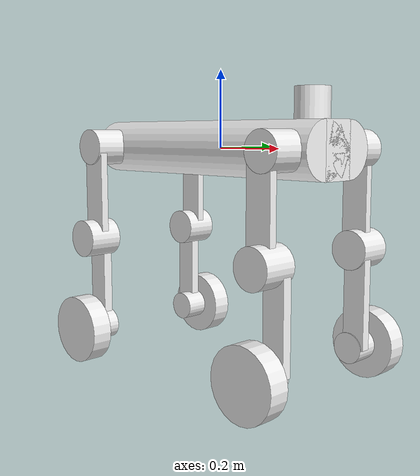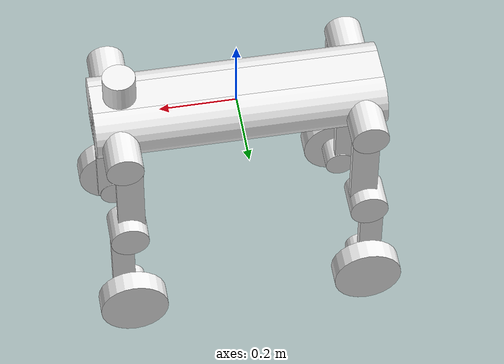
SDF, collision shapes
<sdf version='1.9'>
  <model name='M20'>
    <!-- Enable collision with other objects, disable self-collision -->
    <self_collide>false</self_collide>

    <link name='base_link'>
      <inertial>
        <pose>0.00355105878308153 0.0016507579200937 -0.00346462146571654 0 0 0</pose>
        <mass>15.882</mass>
        <inertia>
          <ixx>0.088078699999999996</ixx>
          <ixy>0.0013960000000000001</ixy>
          <ixz>0.000111</ixz>
          <iyy>0.53381599999999996</iyy>
          <iyz>0.00051900000000000004</iyz>
          <izz>0.56391500000000006</izz>
        </inertia>
      </inertial>
      <collision name='base_link_collision'>
        <pose>0 0 0 0 0 0</pose>
        <geometry>
          <box>
            <size>0.75 0.09 0.14</size>
          </box>
        </geometry>
        <surface>
          <friction>
            <ode>
              <mu>0.8</mu>
              <mu2>0.8</mu2>
            </ode>
          </friction>
          <contact>
            <ode>
              <kp>1e6</kp>
              <kd>100</kd>
              <min_depth>0.001</min_depth>
            </ode>
          </contact>
        </surface>
      </collision>
      <collision name='base_link_collision_1'>
        <pose>0 0.045 0 0 1.570796326794897 0</pose>
        <geometry>
          <cylinder>
            <length>0.75</length>
            <radius>0.070000000000000007</radius>
          </cylinder>
        </geometry>
        <surface>
          <friction>
            <ode>
              <mu>0.8</mu>
              <mu2>0.8</mu2>
            </ode>
          </friction>
          <contact>
            <ode>
              <kp>1e6</kp>
              <kd>100</kd>
              <min_depth>0.001</min_depth>
            </ode>
          </contact>
        </surface>
      </collision>
      <collision name='base_link_collision_2'>
        <pose>0 -0.045 0 0 1.570796326794897 0</pose>
        <geometry>
          <cylinder>
            <length>0.75</length>
            <radius>0.070000000000000007</radius>
          </cylinder>
        </geometry>
        <surface>
          <friction>
            <ode>
              <mu>0.8</mu>
              <mu2>0.8</mu2>
            </ode>
          </friction>
          <contact>
            <ode>
              <kp>1e6</kp>
              <kd>100</kd>
              <min_depth>0.001</min_depth>
            </ode>
          </contact>
        </surface>
      </collision>
      <visual name='base_link_visual'>
        <pose>0 0 0 0 0 0</pose>
        <geometry>
          <mesh>
            <scale>1 1 1</scale>
            <uri>../meshes/base_link.STL</uri>
          </mesh>
        </geometry>
        <material>
          <diffuse>0.941176 0.941176 0.941176 1</diffuse>
          <ambient>0.941176 0.941176 0.941176 1</ambient>
        </material>
      </visual>
      <!-- IMU Sensor -->
      <sensor name='imu_sensor' type='imu'>
        <pose>0.0632 -0.0268 -0.0435 0 0 0</pose>
        <always_on>true</always_on>
        <update_rate>200</update_rate>
        <visualize>false</visualize>
        <!-- topic auto-generated by Gazebo using spawned model name -->
        <imu>
          <angular_velocity>
            <x>
              <noise type='none'/>
            </x>
            <y>
              <noise type='none'/>
            </y>
            <z>
              <noise type='none'/>
            </z>
          </angular_velocity>
          <linear_acceleration>
            <x>
              <noise type='none'/>
            </x>
            <y>
              <noise type='none'/>
            </y>
            <z>
              <noise type='none'/>
            </z>
          </linear_acceleration>
        </imu>
      </sensor>

      <!-- Front Camera Sensor -->
      <sensor name='front_camera' type='camera'>
        <pose>0.37646 0 0.03738 0 0 0</pose>
        <always_on>false</always_on>
        <update_rate>5</update_rate>
        <visualize>false</visualize>
        <!-- topic auto-generated by Gazebo using spawned model name -->
        <camera>
          <horizontal_fov>1.047</horizontal_fov>
          <image>
            <width>640</width>
            <height>480</height>
            <format>R8G8B8</format>
          </image>
          <clip>
            <near>0.1</near>
            <far>100</far>
          </clip>
        </camera>
      </sensor>

      <!-- Rear Camera Sensor -->
      <sensor name='rear_camera' type='camera'>
        <pose>-0.37646 0 0.03738 0 0 3.14159</pose>
        <always_on>false</always_on>
        <update_rate>5</update_rate>
        <visualize>false</visualize>
        <!-- topic auto-generated by Gazebo using spawned model name -->
        <camera>
          <horizontal_fov>1.047</horizontal_fov>
          <image>
            <width>640</width>
            <height>480</height>
            <format>R8G8B8</format>
          </image>
          <clip>
            <near>0.1</near>
            <far>100</far>
          </clip>
        </camera>
      </sensor>

      <!-- Velodyne HDL-32E LiDAR mounted on top of robot head -->
      <!-- Visual: cylindrical body representing the Velodyne unit -->
      <visual name='velodyne_base_visual'>
        <pose>0.3 0 0.095 0 0 0</pose>
        <geometry>
          <cylinder>
            <radius>0.04267</radius>
            <length>0.05</length>
          </cylinder>
        </geometry>
        <material>
          <diffuse>0.2 0.2 0.2 1</diffuse>
          <ambient>0.2 0.2 0.2 1</ambient>
        </material>
      </visual>
      <visual name='velodyne_top_visual'>
        <pose>0.3 0 0.1325 0 0 0</pose>
        <geometry>
          <cylinder>
            <radius>0.04267</radius>
            <length>0.025</length>
          </cylinder>
        </geometry>
        <material>
          <diffuse>0.1 0.1 0.8 1</diffuse>
          <ambient>0.1 0.1 0.8 1</ambient>
        </material>
      </visual>
      <collision name='velodyne_collision'>
        <pose>0.3 0 0.1075 0 0 0</pose>
        <geometry>
          <cylinder>
            <radius>0.04267</radius>
            <length>0.075</length>
          </cylinder>
        </geometry>
      </collision>
      <sensor name='velodyne_hdl32e' type='gpu_lidar'>
        <pose>0.3 0 0.145 0 0 0</pose>
        <always_on>true</always_on>
        <update_rate>10</update_rate>
        <visualize>true</visualize>
        <lidar>
          <scan>
            <horizontal>
              <samples>1024</samples>
              <resolution>1</resolution>
              <min_angle>-3.14159</min_angle>
              <max_angle>3.14159</max_angle>
            </horizontal>
            <vertical>
              <samples>32</samples>
              <resolution>1</resolution>
              <min_angle>-0.5353</min_angle>
              <max_angle>0.1862</max_angle>
            </vertical>
          </scan>
          <range>
            <min>0.9</min>
            <max>70</max>
            <resolution>0.01</resolution>
          </range>
          <noise>
            <type>gaussian</type>
            <mean>0.0</mean>
            <stddev>0.008</stddev>
          </noise>
        </lidar>
      </sensor>
    </link>
    <joint name='fl_hipx_joint' type='revolute'>
      <pose relative_to='base_link'>0.3141 0.06850000000000001 0 0 0 0</pose>
      <parent>base_link</parent>
      <child>fl_hipx</child>
      <axis>
        <xyz>-1 0 0</xyz>
        <limit>
          <lower>-0.61099999999999999</lower>
          <upper>0.436</upper>
          <effort>76.400000000000006</effort>
          <velocity>22.399999999999999</velocity>
        </limit>
        <dynamics>
          <spring_reference>0</spring_reference>
          <spring_stiffness>0</spring_stiffness>
        </dynamics>
      </axis>
    </joint>
    <link name='fl_hipx'>
      <pose relative_to='fl_hipx_joint'>0 0 0 0 0 0</pose>
      <inertial>
        <pose>-0.0111893129496933 0.00891693461032669 0.000405665689861192 0 0 0</pose>
        <mass>0.261359958476582</mass>
        <inertia>
          <ixx>0.00018599999999999999</ixx>
          <ixy>2.5000000000000001e-05</ixy>
          <ixz>-1.2e-05</ixz>
          <iyy>0.00037100000000000002</iyy>
          <iyz>-7.9999999999999996e-06</iyz>
          <izz>0.00028800000000000001</izz>
        </inertia>
      </inertial>
      <collision name='fl_hipx_collision'>
        <pose>0 0.055 0 1.57079632 0 0</pose>
        <geometry>
          <cylinder>
            <length>0.14000000000000001</length>
            <radius>0.048000000000000001</radius>
          </cylinder>
        </geometry>
      </collision>
      <visual name='fl_hipx_visual'>
        <pose>0 0 0 0 0 0</pose>
        <geometry>
          <mesh>
            <scale>1 1 1</scale>
            <uri>../meshes/fl_hipx.STL</uri>
          </mesh>
        </geometry>
        <material>
          <diffuse>0.941176 0.941176 0.941176 1</diffuse>
          <ambient>0.941176 0.941176 0.941176 1</ambient>
        </material>
      </visual>
    </link>
    <joint name='fl_hipy_joint' type='revolute'>
      <pose relative_to='fl_hipx'>0 0 0 0 0 0</pose>
      <parent>fl_hipx</parent>
      <child>fl_hipy</child>
      <axis>
        <xyz>0 -1 0</xyz>
        <limit>
          <lower>-2.5830000000000002</lower>
          <upper>2.286</upper>
          <effort>76.400000000000006</effort>
          <velocity>22.399999999999999</velocity>
        </limit>
        <dynamics>
          <spring_reference>0</spring_reference>
          <spring_stiffness>0</spring_stiffness>
        </dynamics>
      </axis>
    </joint>
    <link name='fl_hipy'>
      <pose relative_to='fl_hipy_joint'>0 0 0 0 0 0</pose>
      <inertial>
        <pose>-0.00199374763010413 0.09843896090458019 -0.130663565833427 0 0 0</pose>
        <mass>2.4929999999999999</mass>
        <inertia>
          <ixx>0.038858999999999998</ixx>
          <ixy>-2.3e-05</ixy>
          <ixz>-3.6999999999999998e-05</ixz>
          <iyy>0.038039999999999997</iyy>
          <iyz>-0.0059849999999999999</iyz>
          <izz>0.0038479999999999999</izz>
        </inertia>
      </inertial>
      <collision name='fl_hipy_collision'>
        <pose>-0.01 0.11 -0.125 0 0 0</pose>
        <geometry>
          <box>
            <size>0.07 0.02 0.25</size>
          </box>
        </geometry>
      </collision>
      <collision name='fl_hipy_collision_1'>
        <pose>0 0.11 -0.25 1.57079632 0 0</pose>
        <geometry>
          <cylinder>
            <length>0.089999999999999997</length>
            <radius>0.050000000000000003</radius>
          </cylinder>
        </geometry>
      </collision>
      <visual name='fl_hipy_visual'>
        <pose>0 0 0 0 0 0</pose>
        <geometry>
          <mesh>
            <scale>1 1 1</scale>
            <uri>../meshes/fl_hipy.STL</uri>
          </mesh>
        </geometry>
        <material>
          <diffuse>0.941176 0.941176 0.941176 1</diffuse>
          <ambient>0.941176 0.941176 0.941176 1</ambient>
        </material>
      </visual>
    </link>
    <joint name='fl_knee_joint' type='revolute'>
      <pose relative_to='fl_hipy'>0 0.0984 -0.25 0 0 0</pose>
      <parent>fl_hipy</parent>
      <child>fl_knee</child>
      <axis>
        <xyz>0 -1 0</xyz>
        <limit>
          <lower>-2.7919999999999998</lower>
          <upper>2.8090000000000002</upper>
          <effort>76.400000000000006</effort>
          <velocity>22.399999999999999</velocity>
        </limit>
        <dynamics>
          <spring_reference>0</spring_reference>
          <spring_stiffness>0</spring_stiffness>
        </dynamics>
      </axis>
    </joint>
    <link name='fl_knee'>
      <pose relative_to='fl_knee_joint'>0 0 0 0 0 0</pose>
      <inertial>
        <pose>0.00341916513259743 0.0026912421076368 -0.181265498605881 0 0 0</pose>
        <mass>1.26</mass>
        <inertia>
          <ixx>0.012936</ixx>
          <ixy>-5.3000000000000001e-05</ixy>
          <ixz>0.00022599999999999999</ixz>
          <iyy>0.013122999999999999</iyy>
          <iyz>-0.001681</iyz>
          <izz>0.0016819999999999999</izz>
        </inertia>
      </inertial>
      <collision name='fl_knee_collision'>
        <pose>0.015 -0.015 -0.125 0 0 0</pose>
        <geometry>
          <box>
            <size>0.06 0.025 0.25</size>
          </box>
        </geometry>
      </collision>
      <collision name='fl_knee_collision_1'>
        <pose>0 0.02 -0.25 1.57079632 0 0</pose>
        <geometry>
          <cylinder>
            <length>0.10000000000000001</length>
            <radius>0.040000000000000001</radius>
          </cylinder>
        </geometry>
      </collision>
      <visual name='fl_knee_visual'>
        <pose>0 0 0 0 0 0</pose>
        <geometry>
          <mesh>
            <scale>1 1 1</scale>
            <uri>../meshes/fl_knee.STL</uri>
          </mesh>
        </geometry>
        <material>
          <diffuse>0.941176 0.941176 0.941176 1</diffuse>
          <ambient>0.941176 0.941176 0.941176 1</ambient>
        </material>
      </visual>
    </link>
    <joint name='fl_wheel_joint' type='revolute'>
      <pose relative_to='fl_knee'>0 0.059676 -0.25 0 0 0</pose>
      <parent>fl_knee</parent>
      <child>fl_wheel</child>
      <axis>
        <xyz>0 -1 0</xyz>
        <limit>
          <effort>21.600000000000001</effort>
          <velocity>79.299999999999997</velocity>
          <lower>-10000000000000000</lower>
          <upper>10000000000000000</upper>
        </limit>
        <dynamics>
          <spring_reference>0</spring_reference>
          <spring_stiffness>0</spring_stiffness>
        </dynamics>
      </axis>
    </joint>
    <link name='fl_wheel'>
      <pose relative_to='fl_wheel_joint'>0 0 0 0 0 0</pose>
      <inertial>
        <pose>-3.11398454355682e-07 0.000279001520740008 5.70329233673394e-07 0 0 0</pose>
        <mass>0.63800000000000001</mass>
        <inertia>
          <ixx>0.0015349999999999999</ixx>
          <ixy>0</ixy>
          <ixz>0</ixz>
          <iyy>0.0028530000000000001</iyy>
          <iyz>0</iyz>
          <izz>0.0015349999999999999</izz>
        </inertia>
      </inertial>
      <collision name='fl_wheel_collision'>
        <pose>0 0 0 1.57079632 0 0</pose>
        <geometry>
          <cylinder>
            <length>0.053999999999999999</length>
            <radius>0.089999999999999997</radius>
          </cylinder>
        </geometry>
        <surface>
          <friction>
            <ode>
              <mu>1.0</mu>
              <mu2>1.0</mu2>
              <fdir1>0 0 1</fdir1>
            </ode>
          </friction>
          <contact>
            <ode>
              <kp>1e6</kp>
              <kd>100</kd>
              <min_depth>0.001</min_depth>
            </ode>
          </contact>
        </surface>
      </collision>
      <visual name='fl_wheel_visual'>
        <pose>0 0 0 0 0 0</pose>
        <geometry>
          <mesh>
            <scale>1 1 1</scale>
            <uri>../meshes/fl_wheel.STL</uri>
          </mesh>
        </geometry>
        <material>
          <diffuse>0.941176 0.941176 0.941176 1</diffuse>
          <ambient>0.941176 0.941176 0.941176 1</ambient>
        </material>
      </visual>
    </link>
    <joint name='fr_hipx_joint' type='revolute'>
      <pose relative_to='base_link'>0.3141 -0.06850000000000001 0 0 0 0</pose>
      <parent>base_link</parent>
      <child>fr_hipx</child>
      <axis>
        <xyz>-1 0 0</xyz>
        <limit>
          <lower>-0.436</lower>
          <upper>0.61099999999999999</upper>
          <effort>76.400000000000006</effort>
          <velocity>22.399999999999999</velocity>
        </limit>
        <dynamics>
          <spring_reference>0</spring_reference>
          <spring_stiffness>0</spring_stiffness>
        </dynamics>
      </axis>
    </joint>
    <link name='fr_hipx'>
      <pose relative_to='fr_hipx_joint'>0 0 0 0 0 0</pose>
      <inertial>
        <pose>-0.0110900940309543 -0.0087503473771439 0.000521421017057358 0 0 0</pose>
        <mass>0.261359958476582</mass>
        <inertia>
          <ixx>0.00018599999999999999</ixx>
          <ixy>-2.5999999999999998e-05</ixy>
          <ixz>-1.2e-05</ixz>
          <iyy>0.00037100000000000002</iyy>
          <iyz>7.9999999999999996e-06</iyz>
          <izz>0.00028800000000000001</izz>
        </inertia>
      </inertial>
      <collision name='fr_hipx_collision'>
        <pose>0 -0.055 0 1.57079632 0 0</pose>
        <geometry>
          <cylinder>
            <length>0.14000000000000001</length>
            <radius>0.048000000000000001</radius>
          </cylinder>
        </geometry>
      </collision>
      <visual name='fr_hipx_visual'>
        <pose>0 0 0 0 0 0</pose>
        <geometry>
          <mesh>
            <scale>1 1 1</scale>
            <uri>../meshes/fr_hipx.STL</uri>
          </mesh>
        </geometry>
        <material>
          <diffuse>0.941176 0.941176 0.941176 1</diffuse>
          <ambient>0.941176 0.941176 0.941176 1</ambient>
        </material>
      </visual>
    </link>
    <joint name='fr_hipy_joint' type='revolute'>
      <pose relative_to='fr_hipx'>0 0 0 0 0 0</pose>
      <parent>fr_hipx</parent>
      <child>fr_hipy</child>
      <axis>
        <xyz>0 -1 0</xyz>
        <limit>
          <lower>-2.5830000000000002</lower>
          <upper>2.286</upper>
          <effort>76.400000000000006</effort>
          <velocity>22.399999999999999</velocity>
        </limit>
        <dynamics>
          <spring_reference>0</spring_reference>
          <spring_stiffness>0</spring_stiffness>
        </dynamics>
      </axis>
    </joint>
    <link name='fr_hipy'>
      <pose relative_to='fr_hipy_joint'>0 0 0 0 0 0</pose>
      <inertial>
        <pose>-0.00229991904853988 -0.0989709441053532 -0.130925037640537 0 0 0</pose>
        <mass>2.4929999999999999</mass>
        <inertia>
          <ixx>0.039276999999999999</ixx>
          <ixy>5.0000000000000004e-06</ixy>
          <ixz>-6.3e-05</ixz>
          <iyy>0.038484999999999998</iyy>
          <iyz>0.0059699999999999996</iyz>
          <izz>0.003921</izz>
        </inertia>
      </inertial>
      <collision name='fr_hipy_collision'>
        <pose>-0.01 -0.11 -0.125 0 0 0</pose>
        <geometry>
          <box>
            <size>0.07 0.02 0.25</size>
          </box>
        </geometry>
      </collision>
      <collision name='fr_hipy_collision_1'>
        <pose>0 -0.11 -0.25 1.57079632 0 0</pose>
        <geometry>
          <cylinder>
            <length>0.089999999999999997</length>
            <radius>0.050000000000000003</radius>
          </cylinder>
        </geometry>
      </collision>
      <visual name='fr_hipy_visual'>
        <pose>0 0 0 0 0 0</pose>
        <geometry>
          <mesh>
            <scale>1 1 1</scale>
            <uri>../meshes/fr_hipy.STL</uri>
          </mesh>
        </geometry>
        <material>
          <diffuse>0.941176 0.941176 0.941176 1</diffuse>
          <ambient>0.941176 0.941176 0.941176 1</ambient>
        </material>
      </visual>
    </link>
    <joint name='fr_knee_joint' type='revolute'>
      <pose relative_to='fr_hipy'>0 -0.0984 -0.25 0 0 0</pose>
      <parent>fr_hipy</parent>
      <child>fr_knee</child>
      <axis>
        <xyz>0 -1 0</xyz>
        <limit>
          <lower>-2.7919999999999998</lower>
          <upper>2.8090000000000002</upper>
          <effort>76.400000000000006</effort>
          <velocity>22.399999999999999</velocity>
        </limit>
        <dynamics>
          <spring_reference>0</spring_reference>
          <spring_stiffness>0</spring_stiffness>
        </dynamics>
      </axis>
    </joint>
    <link name='fr_knee'>
      <pose relative_to='fr_knee_joint'>0 0 0 0 0 0</pose>
      <inertial>
        <pose>0.0035494546955584 -0.002478843181213 -0.180089236444296 0 0 0</pose>
        <mass>1.26</mass>
        <inertia>
          <ixx>0.012936</ixx>
          <ixy>5.3000000000000001e-05</ixy>
          <ixz>0.00022599999999999999</ixz>
          <iyy>0.013122999999999999</iyy>
          <iyz>0.001681</iyz>
          <izz>0.0012830000000000001</izz>
        </inertia>
      </inertial>
      <collision name='fr_knee_collision'>
        <pose>0.015 0.015 -0.125 0 0 0</pose>
        <geometry>
          <box>
            <size>0.06 0.025 0.25</size>
          </box>
        </geometry>
      </collision>
      <collision name='fr_knee_collision_1'>
        <pose>0 -0.02 -0.25 1.57079632 0 0</pose>
        <geometry>
          <cylinder>
            <length>0.10000000000000001</length>
            <radius>0.040000000000000001</radius>
          </cylinder>
        </geometry>
      </collision>
      <visual name='fr_knee_visual'>
        <pose>0 0 0 0 0 0</pose>
        <geometry>
          <mesh>
            <scale>1 1 1</scale>
            <uri>../meshes/fr_knee.STL</uri>
          </mesh>
        </geometry>
        <material>
          <diffuse>0.941176 0.941176 0.941176 1</diffuse>
          <ambient>0.941176 0.941176 0.941176 1</ambient>
        </material>
      </visual>
    </link>
    <joint name='fr_wheel_joint' type='revolute'>
      <pose relative_to='fr_knee'>0 -0.059676 -0.25 0 0 0</pose>
      <parent>fr_knee</parent>
      <child>fr_wheel</child>
      <axis>
        <xyz>0 -1 0</xyz>
        <limit>
          <effort>21.600000000000001</effort>
          <velocity>79.299999999999997</velocity>
          <lower>-10000000000000000</lower>
          <upper>10000000000000000</upper>
        </limit>
        <dynamics>
          <spring_reference>0</spring_reference>
          <spring_stiffness>0</spring_stiffness>
        </dynamics>
      </axis>
    </joint>
    <link name='fr_wheel'>
      <pose relative_to='fr_wheel_joint'>0 0 0 0 0 0</pose>
      <inertial>
        <pose>-6.4732687427016e-07 -0.000279012463466427 -4.62420470803693e-08 0 0 0</pose>
        <mass>0.63800000000000001</mass>
        <inertia>
          <ixx>0.0015349999999999999</ixx>
          <ixy>0</ixy>
          <ixz>0</ixz>
          <iyy>0.0028530000000000001</iyy>
          <iyz>0</iyz>
          <izz>0.0015349999999999999</izz>
        </inertia>
      </inertial>
      <collision name='fr_wheel_collision'>
        <pose>0 0 0 1.57079632 0 0</pose>
        <geometry>
          <cylinder>
            <length>0.053999999999999999</length>
            <radius>0.089999999999999997</radius>
          </cylinder>
        </geometry>
        <surface>
          <friction>
            <ode>
              <mu>1.0</mu>
              <mu2>1.0</mu2>
              <fdir1>0 0 1</fdir1>
            </ode>
          </friction>
          <contact>
            <ode>
              <kp>1e6</kp>
              <kd>100</kd>
              <min_depth>0.001</min_depth>
            </ode>
          </contact>
        </surface>
      </collision>
      <visual name='fr_wheel_visual'>
        <pose>0 0 0 0 0 0</pose>
        <geometry>
          <mesh>
            <scale>1 1 1</scale>
            <uri>../meshes/fr_wheel.STL</uri>
          </mesh>
        </geometry>
        <material>
          <diffuse>0.941176 0.941176 0.941176 1</diffuse>
          <ambient>0.941176 0.941176 0.941176 1</ambient>
        </material>
      </visual>
    </link>
    <joint name='hl_hipx_joint' type='revolute'>
      <pose relative_to='base_link'>-0.3141 0.06850000000000001 0 0 0 0</pose>
      <parent>base_link</parent>
      <child>hl_hipx</child>
      <axis>
        <xyz>-1 0 0</xyz>
        <limit>
          <lower>-0.61099999999999999</lower>
          <upper>0.436</upper>
          <effort>76.400000000000006</effort>
          <velocity>22.399999999999999</velocity>
        </limit>
        <dynamics>
          <spring_reference>0</spring_reference>
          <spring_stiffness>0</spring_stiffness>
        </dynamics>
      </axis>
    </joint>
    <link name='hl_hipx'>
      <pose relative_to='hl_hipx_joint'>0 0 0 0 0 0</pose>
      <inertial>
        <pose>0.0110900940233134 0.008750140350407431 0.000524883746291591 0 0 0</pose>
        <mass>0.261359958476582</mass>
        <inertia>
          <ixx>0.00018599999999999999</ixx>
          <ixy>-2.5000000000000001e-05</ixy>
          <ixz>1.2e-05</ixz>
          <iyy>0.00037100000000000002</iyy>
          <iyz>-7.9999999999999996e-06</iyz>
          <izz>0.00028800000000000001</izz>
        </inertia>
      </inertial>
      <collision name='hl_hipx_collision'>
        <pose>0 0.055 0 1.57079632 0 0</pose>
        <geometry>
          <cylinder>
            <length>0.14000000000000001</length>
            <radius>0.048000000000000001</radius>
          </cylinder>
        </geometry>
      </collision>
      <visual name='hl_hipx_visual'>
        <pose>0 0 0 0 0 0</pose>
        <geometry>
          <mesh>
            <scale>1 1 1</scale>
            <uri>../meshes/hl_hipx.STL</uri>
          </mesh>
        </geometry>
        <material>
          <diffuse>0.941176 0.941176 0.941176 1</diffuse>
          <ambient>0.941176 0.941176 0.941176 1</ambient>
        </material>
      </visual>
    </link>
    <joint name='hl_hipy_joint' type='revolute'>
      <pose relative_to='hl_hipx'>0 0 0 0 0 0</pose>
      <parent>hl_hipx</parent>
      <child>hl_hipy</child>
      <axis>
        <xyz>0 -1 0</xyz>
        <limit>
          <lower>-2.286</lower>
          <upper>2.5830000000000002</upper>
          <effort>76.400000000000006</effort>
          <velocity>22.399999999999999</velocity>
        </limit>
        <dynamics>
          <spring_reference>0</spring_reference>
          <spring_stiffness>0</spring_stiffness>
        </dynamics>
      </axis>
    </joint>
    <link name='hl_hipy'>
      <pose relative_to='hl_hipy_joint'>0 0 0 0 0 0</pose>
      <inertial>
        <pose>0.00204343366218146 0.09902274738330449 -0.13069726691312 0 0 0</pose>
        <mass>2.4929999999999999</mass>
        <inertia>
          <ixx>0.039361</ixx>
          <ixy>2.9e-05</ixy>
          <ixz>9.0000000000000002e-06</ixz>
          <iyy>0.038553999999999998</iyy>
          <iyz>-0.0060010000000000003</iyz>
          <izz>0.0039139999999999999</izz>
        </inertia>
      </inertial>
      <collision name='hl_hipy_collision'>
        <pose>0.01 0.11 -0.125 0 0 0</pose>
        <geometry>
          <box>
            <size>0.07 0.02 0.25</size>
          </box>
        </geometry>
      </collision>
      <collision name='hl_hipy_collision_1'>
        <pose>0 0.11 -0.25 1.57079632 0 0</pose>
        <geometry>
          <cylinder>
            <length>0.089999999999999997</length>
            <radius>0.050000000000000003</radius>
          </cylinder>
        </geometry>
      </collision>
      <visual name='hl_hipy_visual'>
        <pose>0 0 0 0 0 0</pose>
        <geometry>
          <mesh>
            <scale>1 1 1</scale>
            <uri>../meshes/hl_hipy.STL</uri>
          </mesh>
        </geometry>
        <material>
          <diffuse>0.941176 0.941176 0.941176 1</diffuse>
          <ambient>0.941176 0.941176 0.941176 1</ambient>
        </material>
      </visual>
    </link>
    <joint name='hl_knee_joint' type='revolute'>
      <pose relative_to='hl_hipy'>0 0.0984 -0.25 0 0 0</pose>
      <parent>hl_hipy</parent>
      <child>hl_knee</child>
      <axis>
        <xyz>0 -1 0</xyz>
        <limit>
          <lower>-2.8090000000000002</lower>
          <upper>2.7919999999999998</upper>
          <effort>76.400000000000006</effort>
          <velocity>22.399999999999999</velocity>
        </limit>
        <dynamics>
          <spring_reference>0</spring_reference>
          <spring_stiffness>0</spring_stiffness>
        </dynamics>
      </axis>
    </joint>
    <link name='hl_knee'>
      <pose relative_to='hl_knee_joint'>0 0 0 0 0 0</pose>
      <inertial>
        <pose>-0.00354945209738589 0.00247884637205834 -0.180089257150601 0 0 0</pose>
        <mass>1.26</mass>
        <inertia>
          <ixx>0.012936</ixx>
          <ixy>5.3000000000000001e-05</ixy>
          <ixz>-0.00022599999999999999</ixz>
          <iyy>0.013122999999999999</iyy>
          <iyz>-0.001681</iyz>
          <izz>0.0012830000000000001</izz>
        </inertia>
      </inertial>
      <collision name='hl_knee_collision'>
        <pose>-0.015 0.015 -0.125 0 0 0</pose>
        <geometry>
          <box>
            <size>0.06 0.025 0.25</size>
          </box>
        </geometry>
      </collision>
      <collision name='hl_knee_collision_1'>
        <pose>0 0.02 -0.25 1.57079632 0 0</pose>
        <geometry>
          <cylinder>
            <length>0.10000000000000001</length>
            <radius>0.040000000000000001</radius>
          </cylinder>
        </geometry>
      </collision>
      <visual name='hl_knee_visual'>
        <pose>0 0 0 0 0 0</pose>
        <geometry>
          <mesh>
            <scale>1 1 1</scale>
            <uri>../meshes/hl_knee.STL</uri>
          </mesh>
        </geometry>
        <material>
          <diffuse>0.941176 0.941176 0.941176 1</diffuse>
          <ambient>0.941176 0.941176 0.941176 1</ambient>
        </material>
      </visual>
    </link>
    <joint name='hl_wheel_joint' type='revolute'>
      <pose relative_to='hl_knee'>0 0.059676 -0.25 0 0 0</pose>
      <parent>hl_knee</parent>
      <child>hl_wheel</child>
      <axis>
        <xyz>0 -1 0</xyz>
        <limit>
          <effort>21.600000000000001</effort>
          <velocity>79.299999999999997</velocity>
          <lower>-10000000000000000</lower>
          <upper>10000000000000000</upper>
        </limit>
        <dynamics>
          <spring_reference>0</spring_reference>
          <spring_stiffness>0</spring_stiffness>
        </dynamics>
      </axis>
    </joint>
    <link name='hl_wheel'>
      <pose relative_to='hl_wheel_joint'>0 0 0 0 0 0</pose>
      <inertial>
        <pose>-6.07889369508285e-07 0.000279009097070765 2.10489879304276e-07 0 0 0</pose>
        <mass>0.63800000000000001</mass>
        <inertia>
          <ixx>0.0015349999999999999</ixx>
          <ixy>0</ixy>
          <ixz>0</ixz>
          <iyy>0.0028530000000000001</iyy>
          <iyz>0</iyz>
          <izz>0.0015349999999999999</izz>
        </inertia>
      </inertial>
      <collision name='hl_wheel_collision'>
        <pose>0 0 0 1.57079632 0 0</pose>
        <geometry>
          <cylinder>
            <length>0.053999999999999999</length>
            <radius>0.089999999999999997</radius>
          </cylinder>
        </geometry>
        <surface>
          <friction>
            <ode>
              <mu>1.0</mu>
              <mu2>1.0</mu2>
              <fdir1>0 0 1</fdir1>
            </ode>
          </friction>
          <contact>
            <ode>
              <kp>1e6</kp>
              <kd>100</kd>
              <min_depth>0.001</min_depth>
            </ode>
          </contact>
        </surface>
      </collision>
      <visual name='hl_wheel_visual'>
        <pose>0 0 0 0 0 0</pose>
        <geometry>
          <mesh>
            <scale>1 1 1</scale>
            <uri>../meshes/hl_wheel.STL</uri>
          </mesh>
        </geometry>
        <material>
          <diffuse>0.941176 0.941176 0.941176 1</diffuse>
          <ambient>0.941176 0.941176 0.941176 1</ambient>
        </material>
      </visual>
    </link>
    <joint name='hr_hipx_joint' type='revolute'>
      <pose relative_to='base_link'>-0.3141 -0.06850000000000001 0 0 0 0</pose>
      <parent>base_link</parent>
      <child>hr_hipx</child>
      <axis>
        <xyz>-1 0 0</xyz>
        <limit>
          <lower>-0.436</lower>
          <upper>0.61099999999999999</upper>
          <effort>76.400000000000006</effort>
          <velocity>22.399999999999999</velocity>
        </limit>
        <dynamics>
          <spring_reference>0</spring_reference>
          <spring_stiffness>0</spring_stiffness>
        </dynamics>
      </axis>
    </joint>
    <link name='hr_hipx'>
      <pose relative_to='hr_hipx_joint'>0 0 0 0 0 0</pose>
      <inertial>
        <pose>0.0110901558226165 -0.00875011717083631 0.000524936954718227 0 0 0</pose>
        <mass>0.261359958476582</mass>
        <inertia>
          <ixx>0.00018599999999999999</ixx>
          <ixy>2.5000000000000001e-05</ixy>
          <ixz>1.2e-05</ixz>
          <iyy>0.00037100000000000002</iyy>
          <iyz>7.9999999999999996e-06</iyz>
          <izz>0.00028800000000000001</izz>
        </inertia>
      </inertial>
      <collision name='hr_hipx_collision'>
        <pose>0 -0.055 0 1.57079632 0 0</pose>
        <geometry>
          <cylinder>
            <length>0.14000000000000001</length>
            <radius>0.048000000000000001</radius>
          </cylinder>
        </geometry>
      </collision>
      <visual name='hr_hipx_visual'>
        <pose>0 0 0 0 0 0</pose>
        <geometry>
          <mesh>
            <scale>1 1 1</scale>
            <uri>../meshes/hr_hipx.STL</uri>
          </mesh>
        </geometry>
        <material>
          <diffuse>0.941176 0.941176 0.941176 1</diffuse>
          <ambient>0.941176 0.941176 0.941176 1</ambient>
        </material>
      </visual>
    </link>
    <joint name='hr_hipy_joint' type='revolute'>
      <pose relative_to='hr_hipx'>0 0 0 0 0 0</pose>
      <parent>hr_hipx</parent>
      <child>hr_hipy</child>
      <axis>
        <xyz>0 -1 0</xyz>
        <limit>
          <lower>-2.286</lower>
          <upper>2.5830000000000002</upper>
          <effort>76.400000000000006</effort>
          <velocity>22.399999999999999</velocity>
        </limit>
        <dynamics>
          <spring_reference>0</spring_reference>
          <spring_stiffness>0</spring_stiffness>
        </dynamics>
      </axis>
    </joint>
    <link name='hr_hipy'>
      <pose relative_to='hr_hipy_joint'>0 0 0 0 0 0</pose>
      <inertial>
        <pose>0.00199199678434109 -0.0983704174694303 -0.13056065751366 0 0 0</pose>
        <mass>2.4929999999999999</mass>
        <inertia>
          <ixx>0.038878000000000003</ixx>
          <ixy>-2.1999999999999999e-05</ixy>
          <ixz>3.4e-05</ixz>
          <iyy>0.038052999999999997</iyy>
          <iyz>0.0059950000000000003</iyz>
          <izz>0.0038539999999999998</izz>
        </inertia>
      </inertial>
      <collision name='hr_hipy_collision'>
        <pose>0.01 -0.11 -0.125 0 0 0</pose>
        <geometry>
          <box>
            <size>0.07 0.02 0.25</size>
          </box>
        </geometry>
      </collision>
      <collision name='hr_hipy_collision_1'>
        <pose>0 -0.11 -0.25 1.57079632 0 0</pose>
        <geometry>
          <cylinder>
            <length>0.089999999999999997</length>
            <radius>0.050000000000000003</radius>
          </cylinder>
        </geometry>
      </collision>
      <visual name='hr_hipy_visual'>
        <pose>0 0 0 0 0 0</pose>
        <geometry>
          <mesh>
            <scale>1 1 1</scale>
            <uri>../meshes/hr_hipy.STL</uri>
          </mesh>
        </geometry>
        <material>
          <diffuse>0.941176 0.941176 0.941176 1</diffuse>
          <ambient>0.941176 0.941176 0.941176 1</ambient>
        </material>
      </visual>
    </link>
    <joint name='hr_knee_joint' type='revolute'>
      <pose relative_to='hr_hipy'>0 -0.0984 -0.25 0 0 0</pose>
      <parent>hr_hipy</parent>
      <child>hr_knee</child>
      <axis>
        <xyz>0 -1 0</xyz>
        <limit>
          <lower>-2.8090000000000002</lower>
          <upper>2.7919999999999998</upper>
          <effort>76.400000000000006</effort>
          <velocity>22.399999999999999</velocity>
        </limit>
        <dynamics>
          <spring_reference>0</spring_reference>
          <spring_stiffness>0</spring_stiffness>
        </dynamics>
      </axis>
    </joint>
    <link name='hr_knee'>
      <pose relative_to='hr_knee_joint'>0 0 0 0 0 0</pose>
      <inertial>
        <pose>-0.00341053036115846 -0.0027020185369851 -0.181287492263963 0 0 0</pose>
        <mass>1.26</mass>
        <inertia>
          <ixx>0.012936</ixx>
          <ixy>-5.3000000000000001e-05</ixy>
          <ixz>-0.00022599999999999999</ixz>
          <iyy>0.013122999999999999</iyy>
          <iyz>0.001681</iyz>
          <izz>0.0012830000000000001</izz>
        </inertia>
      </inertial>
      <collision name='hr_knee_collision'>
        <pose>-0.015 0.015 -0.125 0 0 0</pose>
        <geometry>
          <box>
            <size>0.06 0.025 0.25</size>
          </box>
        </geometry>
      </collision>
      <collision name='hr_knee_collision_1'>
        <pose>0 -0.02 -0.25 1.57079632 0 0</pose>
        <geometry>
          <cylinder>
            <length>0.10000000000000001</length>
            <radius>0.040000000000000001</radius>
          </cylinder>
        </geometry>
      </collision>
      <visual name='hr_knee_visual'>
        <pose>0 0 0 0 0 0</pose>
        <geometry>
          <mesh>
            <scale>1 1 1</scale>
            <uri>../meshes/hr_knee.STL</uri>
          </mesh>
        </geometry>
        <material>
          <diffuse>0.941176 0.941176 0.941176 1</diffuse>
          <ambient>0.941176 0.941176 0.941176 1</ambient>
        </material>
      </visual>
    </link>
    <joint name='hr_wheel_joint' type='revolute'>
      <pose relative_to='hr_knee'>0 -0.059676 -0.25 0 0 0</pose>
      <parent>hr_knee</parent>
      <child>hr_wheel</child>
      <axis>
        <xyz>0 -1 0</xyz>
        <limit>
          <effort>21.600000000000001</effort>
          <velocity>79.299999999999997</velocity>
          <lower>-10000000000000000</lower>
          <upper>10000000000000000</upper>
        </limit>
        <dynamics>
          <spring_reference>0</spring_reference>
          <spring_stiffness>0</spring_stiffness>
        </dynamics>
      </axis>
    </joint>
    <link name='hr_wheel'>
      <pose relative_to='hr_wheel_joint'>0 0 0 0 0 0</pose>
      <inertial>
        <pose>6.09746291457824e-07 -0.00027900886004309 2.0131377032051e-07 0 0 0</pose>
        <mass>0.63800000000000001</mass>
        <inertia>
          <ixx>0.0015349999999999999</ixx>
          <ixy>0</ixy>
          <ixz>0</ixz>
          <iyy>0.0028530000000000001</iyy>
          <iyz>0</iyz>
          <izz>0.0015349999999999999</izz>
        </inertia>
      </inertial>
      <collision name='hr_wheel_collision'>
        <pose>0 0 0 1.57079632 0 0</pose>
        <geometry>
          <cylinder>
            <length>0.053999999999999999</length>
            <radius>0.089999999999999997</radius>
          </cylinder>
        </geometry>
        <surface>
          <friction>
            <ode>
              <mu>1.0</mu>
              <mu2>1.0</mu2>
              <fdir1>0 0 1</fdir1>
            </ode>
          </friction>
          <contact>
            <ode>
              <kp>1e6</kp>
              <kd>100</kd>
              <min_depth>0.001</min_depth>
            </ode>
          </contact>
        </surface>
      </collision>
      <visual name='hr_wheel_visual'>
        <pose>0 0 0 0 0 0</pose>
        <geometry>
          <mesh>
            <scale>1 1 1</scale>
            <uri>../meshes/hr_wheel.STL</uri>
          </mesh>
        </geometry>
        <material>
          <diffuse>0.941176 0.941176 0.941176 1</diffuse>
          <ambient>0.941176 0.941176 0.941176 1</ambient>
        </material>
      </visual>
    </link>

    <!-- ===== PLUGINS ===== -->

    <!-- Contact Plugin for collision detection -->
    <plugin filename="ignition-gazebo-contact-system" name="gz::sim::systems::Contact"/>

    <!-- IMU Sensor Plugin -->
    <plugin filename="ignition-gazebo-imu-system" name="gz::sim::systems::Imu"/>

    <!-- Joint State Publisher Plugin -->
    <plugin filename="ignition-gazebo-joint-state-publisher-system" name="gz::sim::systems::JointStatePublisher">
      <joint_name>fl_hipx_joint</joint_name>
      <joint_name>fl_hipy_joint</joint_name>
      <joint_name>fl_knee_joint</joint_name>
      <joint_name>fl_wheel_joint</joint_name>
      <joint_name>fr_hipx_joint</joint_name>
      <joint_name>fr_hipy_joint</joint_name>
      <joint_name>fr_knee_joint</joint_name>
      <joint_name>fr_wheel_joint</joint_name>
      <joint_name>hl_hipx_joint</joint_name>
      <joint_name>hl_hipy_joint</joint_name>
      <joint_name>hl_knee_joint</joint_name>
      <joint_name>hl_wheel_joint</joint_name>
      <joint_name>hr_hipx_joint</joint_name>
      <joint_name>hr_hipy_joint</joint_name>
      <joint_name>hr_knee_joint</joint_name>
      <joint_name>hr_wheel_joint</joint_name>
    </plugin>

    <!-- Apply Joint Force Plugin for each joint -->
    <plugin filename="ignition-gazebo-apply-joint-force-system" name="gz::sim::systems::ApplyJointForce">
      <joint_name>fl_hipx_joint</joint_name>
    </plugin>
    <plugin filename="ignition-gazebo-apply-joint-force-system" name="gz::sim::systems::ApplyJointForce">
      <joint_name>fl_hipy_joint</joint_name>
    </plugin>
    <plugin filename="ignition-gazebo-apply-joint-force-system" name="gz::sim::systems::ApplyJointForce">
      <joint_name>fl_knee_joint</joint_name>
    </plugin>
    <plugin filename="ignition-gazebo-apply-joint-force-system" name="gz::sim::systems::ApplyJointForce">
      <joint_name>fl_wheel_joint</joint_name>
    </plugin>
    <plugin filename="ignition-gazebo-apply-joint-force-system" name="gz::sim::systems::ApplyJointForce">
      <joint_name>fr_hipx_joint</joint_name>
    </plugin>
    <plugin filename="ignition-gazebo-apply-joint-force-system" name="gz::sim::systems::ApplyJointForce">
      <joint_name>fr_hipy_joint</joint_name>
    </plugin>
    <plugin filename="ignition-gazebo-apply-joint-force-system" name="gz::sim::systems::ApplyJointForce">
      <joint_name>fr_knee_joint</joint_name>
    </plugin>
    <plugin filename="ignition-gazebo-apply-joint-force-system" name="gz::sim::systems::ApplyJointForce">
      <joint_name>fr_wheel_joint</joint_name>
    </plugin>
    <plugin filename="ignition-gazebo-apply-joint-force-system" name="gz::sim::systems::ApplyJointForce">
      <joint_name>hl_hipx_joint</joint_name>
    </plugin>
    <plugin filename="ignition-gazebo-apply-joint-force-system" name="gz::sim::systems::ApplyJointForce">
      <joint_name>hl_hipy_joint</joint_name>
    </plugin>
    <plugin filename="ignition-gazebo-apply-joint-force-system" name="gz::sim::systems::ApplyJointForce">
      <joint_name>hl_knee_joint</joint_name>
    </plugin>
    <plugin filename="ignition-gazebo-apply-joint-force-system" name="gz::sim::systems::ApplyJointForce">
      <joint_name>hl_wheel_joint</joint_name>
    </plugin>
    <plugin filename="ignition-gazebo-apply-joint-force-system" name="gz::sim::systems::ApplyJointForce">
      <joint_name>hr_hipx_joint</joint_name>
    </plugin>
    <plugin filename="ignition-gazebo-apply-joint-force-system" name="gz::sim::systems::ApplyJointForce">
      <joint_name>hr_hipy_joint</joint_name>
    </plugin>
    <plugin filename="ignition-gazebo-apply-joint-force-system" name="gz::sim::systems::ApplyJointForce">
      <joint_name>hr_knee_joint</joint_name>
    </plugin>
    <plugin filename="ignition-gazebo-apply-joint-force-system" name="gz::sim::systems::ApplyJointForce">
      <joint_name>hr_wheel_joint</joint_name>
    </plugin>

  </model>
</sdf>
